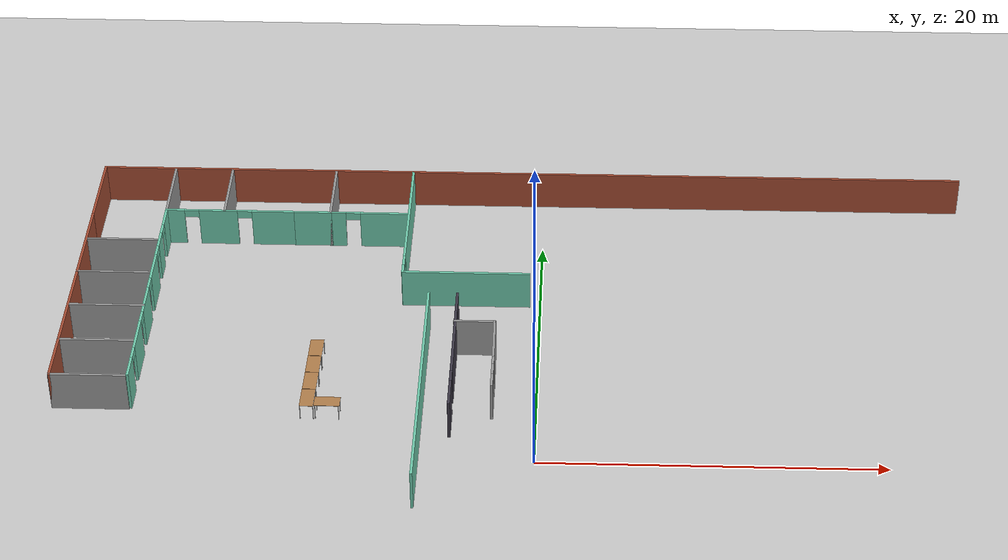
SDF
<sdf version="1.7">
 <world name="default">
  <model name="ground_plane">
   <static>1</static>
   <link name="link">
    <collision name="collision">
     <geometry><plane><normal>0 0 1</normal><size>100 100</size></plane></geometry>
     <surface>
      <contact><ode><kp>1e15</kp><kd>1e13</kd></ode></contact>
      <friction><ode><mu>1.0</mu><mu2>1.0</mu2></ode></friction>
     </surface>
    </collision>
    <visual name="visual">
     <cast_shadows>0</cast_shadows>
     <geometry><plane><normal>0 0 1</normal><size>100 100</size></plane></geometry>
     <material>
      <script><uri>file://media/materials/scripts/gazebo.material</uri><name>Gazebo/Grey</name></script>
     </material>
    </visual>
   </link>
  </model>
  <model name="circuit_launch">
   <pose>-0.874625 6.32825 0 0 -0 0</pose>
   <link name="Wall_107">
    <pose>-18.6032 13.9124 0 0 -0 3.14159</pose>
    <visual name="Wall_107_Visual_0">
     <pose>-2.69056 0 1.25 0 -0 0</pose>
     <geometry><box><size>2.61888 0.15 2.5</size></box></geometry>
     <material>
      <script><uri>file://media/materials/scripts/gazebo.material</uri><name>Gazebo/Grey</name></script>
      <ambient>0.435294 0.796078 0.67451 1</ambient>
     </material>
     <meta><layer>0</layer></meta>
    </visual>
    <collision name="Wall_107_Collision_0">
     <geometry><box><size>2.61888 0.15 2.5</size></box></geometry>
     <pose>-2.69056 0 1.25 0 -0 0</pose>
    </collision>
    <visual name="Wall_107_Visual_1">
     <pose>0.710992 0 1.25 0 -0 0</pose>
     <geometry><box><size>2.38423 0.15 2.5</size></box></geometry>
     <material>
      <script><uri>file://media/materials/scripts/gazebo.material</uri><name>Gazebo/Grey</name></script>
      <ambient>0.435294 0.796078 0.67451 1</ambient>
     </material>
     <meta><layer>0</layer></meta>
    </visual>
    <collision name="Wall_107_Collision_1">
     <geometry><box><size>2.38423 0.15 2.5</size></box></geometry>
     <pose>0.710992 0 1.25 0 -0 0</pose>
    </collision>
    <visual name="Wall_107_Visual_2">
     <pose>3.40155 0 1.25 0 -0 0</pose>
     <geometry><box><size>1.19689 0.15 2.5</size></box></geometry>
     <material>
      <script><uri>file://media/materials/scripts/gazebo.material</uri><name>Gazebo/Grey</name></script>
      <ambient>0.435294 0.796078 0.67451 1</ambient>
     </material>
     <meta><layer>0</layer></meta>
    </visual>
    <collision name="Wall_107_Collision_2">
     <geometry><box><size>1.19689 0.15 2.5</size></box></geometry>
     <pose>3.40155 0 1.25 0 -0 0</pose>
    </collision>
    <visual name="Wall_107_Visual_3">
     <pose>-0.931122 0 2.25 0 -0 0</pose>
     <geometry><box><size>0.9 0.15 0.5</size></box></geometry>
     <material>
      <script><uri>file://media/materials/scripts/gazebo.material</uri><name>Gazebo/Grey</name></script>
      <ambient>0.435294 0.796078 0.67451 1</ambient>
     </material>
     <meta><layer>0</layer></meta>
    </visual>
    <collision name="Wall_107_Collision_3">
     <geometry><box><size>0.9 0.15 0.5</size></box></geometry>
     <pose>-0.931122 0 2.25 0 -0 0</pose>
    </collision>
    <visual name="Wall_107_Visual_4">
     <pose>2.35311 0 2.25 0 -0 0</pose>
     <geometry><box><size>0.9 0.15 0.5</size></box></geometry>
     <material>
      <script><uri>file://media/materials/scripts/gazebo.material</uri><name>Gazebo/Grey</name></script>
      <ambient>0.435294 0.796078 0.67451 1</ambient>
     </material>
     <meta><layer>0</layer></meta>
    </visual>
    <collision name="Wall_107_Collision_4">
     <geometry><box><size>0.9 0.15 0.5</size></box></geometry>
     <pose>2.35311 0 2.25 0 -0 0</pose>
    </collision>
   </link>
   <link name="Wall_111">
    <pose>-22.5282 5.86241 0 0 -0 -1.5708</pose>
    <visual name="Wall_111_Visual_0">
     <pose>-7.31172 0 1.25 0 -0 0</pose>
     <geometry><box><size>1.62655 0.15 2.5</size></box></geometry>
     <material>
      <script><uri>file://media/materials/scripts/gazebo.material</uri><name>Gazebo/Grey</name></script>
      <ambient>0.435294 0.796078 0.67451 1</ambient>
     </material>
     <meta><layer>0</layer></meta>
    </visual>
    <collision name="Wall_111_Collision_0">
     <geometry><box><size>1.62655 0.15 2.5</size></box></geometry>
     <pose>-7.31172 0 1.25 0 -0 0</pose>
    </collision>
    <visual name="Wall_111_Visual_1">
     <pose>-4.93124 0 1.25 0 -0 0</pose>
     <geometry><box><size>1.33442 0.15 2.5</size></box></geometry>
     <material>
      <script><uri>file://media/materials/scripts/gazebo.material</uri><name>Gazebo/Grey</name></script>
      <ambient>0.435294 0.796078 0.67451 1</ambient>
     </material>
     <meta><layer>0</layer></meta>
    </visual>
    <collision name="Wall_111_Collision_1">
     <geometry><box><size>1.33442 0.15 2.5</size></box></geometry>
     <pose>-4.93124 0 1.25 0 -0 0</pose>
    </collision>
    <visual name="Wall_111_Visual_2">
     <pose>-2.19142 0 1.25 0 -0 0</pose>
     <geometry><box><size>2.34522 0.15 2.5</size></box></geometry>
     <material>
      <script><uri>file://media/materials/scripts/gazebo.material</uri><name>Gazebo/Grey</name></script>
      <ambient>0.435294 0.796078 0.67451 1</ambient>
     </material>
     <meta><layer>0</layer></meta>
    </visual>
    <collision name="Wall_111_Collision_2">
     <geometry><box><size>2.34522 0.15 2.5</size></box></geometry>
     <pose>-2.19142 0 1.25 0 -0 0</pose>
    </collision>
    <visual name="Wall_111_Visual_3">
     <pose>1.0671 0 1.25 0 -0 0</pose>
     <geometry><box><size>2.37182 0.15 2.5</size></box></geometry>
     <material>
      <script><uri>file://media/materials/scripts/gazebo.material</uri><name>Gazebo/Grey</name></script>
      <ambient>0.435294 0.796078 0.67451 1</ambient>
     </material>
     <meta><layer>0</layer></meta>
    </visual>
    <collision name="Wall_111_Collision_3">
     <geometry><box><size>2.37182 0.15 2.5</size></box></geometry>
     <pose>1.0671 0 1.25 0 -0 0</pose>
    </collision>
    <visual name="Wall_111_Visual_4">
     <pose>4.37883 0 1.25 0 -0 0</pose>
     <geometry><box><size>2.45162 0.15 2.5</size></box></geometry>
     <material>
      <script><uri>file://media/materials/scripts/gazebo.material</uri><name>Gazebo/Grey</name></script>
      <ambient>0.435294 0.796078 0.67451 1</ambient>
     </material>
     <meta><layer>0</layer></meta>
    </visual>
    <collision name="Wall_111_Collision_4">
     <geometry><box><size>2.45162 0.15 2.5</size></box></geometry>
     <pose>4.37883 0 1.25 0 -0 0</pose>
    </collision>
    <visual name="Wall_111_Visual_5">
     <pose>7.31482 0 1.25 0 -0 0</pose>
     <geometry><box><size>1.62036 0.15 2.5</size></box></geometry>
     <material>
      <script><uri>file://media/materials/scripts/gazebo.material</uri><name>Gazebo/Grey</name></script>
      <ambient>0.435294 0.796078 0.67451 1</ambient>
     </material>
     <meta><layer>0</layer></meta>
    </visual>
    <collision name="Wall_111_Collision_5">
     <geometry><box><size>1.62036 0.15 2.5</size></box></geometry>
     <pose>7.31482 0 1.25 0 -0 0</pose>
    </collision>
    <visual name="Wall_111_Visual_6">
     <pose>-6.04845 0 2.25 0 -0 0</pose>
     <geometry><box><size>0.9 0.15 0.5</size></box></geometry>
     <material>
      <script><uri>file://media/materials/scripts/gazebo.material</uri><name>Gazebo/Grey</name></script>
      <ambient>0.435294 0.796078 0.67451 1</ambient>
     </material>
     <meta><layer>0</layer></meta>
    </visual>
    <collision name="Wall_111_Collision_6">
     <geometry><box><size>0.9 0.15 0.5</size></box></geometry>
     <pose>-6.04845 0 2.25 0 -0 0</pose>
    </collision>
    <visual name="Wall_111_Visual_7">
     <pose>-3.81403 0 2.25 0 -0 0</pose>
     <geometry><box><size>0.9 0.15 0.5</size></box></geometry>
     <material>
      <script><uri>file://media/materials/scripts/gazebo.material</uri><name>Gazebo/Grey</name></script>
      <ambient>0.435294 0.796078 0.67451 1</ambient>
     </material>
     <meta><layer>0</layer></meta>
    </visual>
    <collision name="Wall_111_Collision_7">
     <geometry><box><size>0.9 0.15 0.5</size></box></geometry>
     <pose>-3.81403 0 2.25 0 -0 0</pose>
    </collision>
    <visual name="Wall_111_Visual_8">
     <pose>-0.568808 0 2.25 0 -0 0</pose>
     <geometry><box><size>0.9 0.15 0.5</size></box></geometry>
     <material>
      <script><uri>file://media/materials/scripts/gazebo.material</uri><name>Gazebo/Grey</name></script>
      <ambient>0.435294 0.796078 0.67451 1</ambient>
     </material>
     <meta><layer>0</layer></meta>
    </visual>
    <collision name="Wall_111_Collision_8">
     <geometry><box><size>0.9 0.15 0.5</size></box></geometry>
     <pose>-0.568808 0 2.25 0 -0 0</pose>
    </collision>
    <visual name="Wall_111_Visual_9">
     <pose>2.70302 0 2.25 0 -0 0</pose>
     <geometry><box><size>0.9 0.15 0.5</size></box></geometry>
     <material>
      <script><uri>file://media/materials/scripts/gazebo.material</uri><name>Gazebo/Grey</name></script>
      <ambient>0.435294 0.796078 0.67451 1</ambient>
     </material>
     <meta><layer>0</layer></meta>
    </visual>
    <collision name="Wall_111_Collision_9">
     <geometry><box><size>0.9 0.15 0.5</size></box></geometry>
     <pose>2.70302 0 2.25 0 -0 0</pose>
    </collision>
    <visual name="Wall_111_Visual_10">
     <pose>6.05464 0 2.25 0 -0 0</pose>
     <geometry><box><size>0.9 0.15 0.5</size></box></geometry>
     <material>
      <script><uri>file://media/materials/scripts/gazebo.material</uri><name>Gazebo/Grey</name></script>
      <ambient>0.435294 0.796078 0.67451 1</ambient>
     </material>
     <meta><layer>0</layer></meta>
    </visual>
    <collision name="Wall_111_Collision_10">
     <geometry><box><size>0.9 0.15 0.5</size></box></geometry>
     <pose>6.05464 0 2.25 0 -0 0</pose>
    </collision>
   </link>
   <link name="Wall_124">
    <collision name="Wall_124_Collision">
     <geometry><box><size>16.25 0.15 2.5</size></box></geometry>
     <pose>0 0 1.25 0 -0 0</pose>
    </collision>
    <visual name="Wall_124_Visual">
     <pose>0 0 1.25 0 -0 0</pose>
     <geometry><box><size>16.25 0.15 2.5</size></box></geometry>
     <material>
      <script><uri>file://media/materials/scripts/gazebo.material</uri><name>Gazebo/Grey</name></script>
      <ambient>0.435294 0.796078 0.67451 1</ambient>
     </material>
     <meta><layer>0</layer></meta>
    </visual>
    <pose>-5.75967 -2.14165 0 0 -0 -1.5708</pose>
   </link>
   <link name="Wall_14">
    <pose>-4.03141 0.854113 0 0 -0 -1.57076</pose>
    <visual name="Wall_14_Visual_0">
     <pose>-4.27972 0 1.25 0 -0 0</pose>
     <geometry><box><size>1.66175 0.15 2.5</size></box></geometry>
     <material>
      <script><uri>file://media/materials/scripts/gazebo.material</uri><name>Gazebo/Grey</name></script>
      <ambient>0.239216 0.219608 0.27451 1</ambient>
     </material>
     <meta><layer>0</layer></meta>
    </visual>
    <collision name="Wall_14_Collision_0">
     <geometry><box><size>1.66175 0.15 2.5</size></box></geometry>
     <pose>-4.27972 0 1.25 0 -0 0</pose>
    </collision>
    <visual name="Wall_14_Visual_1">
     <pose>-0.200437 0 1.25 0 -0 0</pose>
     <geometry><box><size>4.69681 0.15 2.5</size></box></geometry>
     <material>
      <script><uri>file://media/materials/scripts/gazebo.material</uri><name>Gazebo/Grey</name></script>
      <ambient>0.239216 0.219608 0.27451 1</ambient>
     </material>
     <meta><layer>0</layer></meta>
    </visual>
    <collision name="Wall_14_Collision_1">
     <geometry><box><size>4.69681 0.15 2.5</size></box></geometry>
     <pose>-0.200437 0 1.25 0 -0 0</pose>
    </collision>
    <visual name="Wall_14_Visual_2">
     <pose>4.07928 0 1.25 0 -0 0</pose>
     <geometry><box><size>2.06262 0.15 2.5</size></box></geometry>
     <material>
      <script><uri>file://media/materials/scripts/gazebo.material</uri><name>Gazebo/Grey</name></script>
      <ambient>0.239216 0.219608 0.27451 1</ambient>
     </material>
     <meta><layer>0</layer></meta>
    </visual>
    <collision name="Wall_14_Collision_2">
     <geometry><box><size>2.06262 0.15 2.5</size></box></geometry>
     <pose>4.07928 0 1.25 0 -0 0</pose>
    </collision>
    <visual name="Wall_14_Visual_3">
     <pose>-2.99884 0 2.25 0 -0 0</pose>
     <geometry><box><size>0.9 0.15 0.5</size></box></geometry>
     <material>
      <script><uri>file://media/materials/scripts/gazebo.material</uri><name>Gazebo/Grey</name></script>
      <ambient>0.239216 0.219608 0.27451 1</ambient>
     </material>
     <meta><layer>0</layer></meta>
    </visual>
    <collision name="Wall_14_Collision_3">
     <geometry><box><size>0.9 0.15 0.5</size></box></geometry>
     <pose>-2.99884 0 2.25 0 -0 0</pose>
    </collision>
    <visual name="Wall_14_Visual_4">
     <pose>2.59797 0 2.25 0 -0 0</pose>
     <geometry><box><size>0.9 0.15 0.5</size></box></geometry>
     <material>
      <script><uri>file://media/materials/scripts/gazebo.material</uri><name>Gazebo/Grey</name></script>
      <ambient>0.239216 0.219608 0.27451 1</ambient>
     </material>
     <meta><layer>0</layer></meta>
    </visual>
    <collision name="Wall_14_Collision_4">
     <geometry><box><size>0.9 0.15 0.5</size></box></geometry>
     <pose>2.59797 0 2.25 0 -0 0</pose>
    </collision>
   </link>
   <link name="Wall_167">
    <collision name="Wall_167_Collision">
     <geometry><box><size>4.5 0.15 2.5</size></box></geometry>
     <pose>0 0 1.25 0 -0 0</pose>
    </collision>
    <visual name="Wall_167_Visual">
     <pose>0 0 1.25 0 -0 0</pose>
     <geometry><box><size>4.5 0.15 2.5</size></box></geometry>
     <material>
      <script><uri>file://media/materials/scripts/gazebo.material</uri><name>Gazebo/Grey</name></script>
      <ambient>1 1 1 1</ambient>
     </material>
     <meta><layer>0</layer></meta>
    </visual>
    <pose>-18.9148 16.0952 0 0 -0 1.5708</pose>
   </link>
   <link name="Wall_169">
    <collision name="Wall_169_Collision">
     <geometry><box><size>4.5 0.15 2.5</size></box></geometry>
     <pose>0 0 1.25 0 -0 0</pose>
    </collision>
    <visual name="Wall_169_Visual">
     <pose>0 0 1.25 0 -0 0</pose>
     <geometry><box><size>4.5 0.15 2.5</size></box></geometry>
     <material>
      <script><uri>file://media/materials/scripts/gazebo.material</uri><name>Gazebo/Grey</name></script>
      <ambient>1 1 1 1</ambient>
     </material>
     <meta><layer>0</layer></meta>
    </visual>
    <pose>-22.5282 16.0874 0 0 -0 1.5708</pose>
   </link>
   <link name="Wall_171">
    <collision name="Wall_171_Collision">
     <geometry><box><size>4.5 0.15 2.5</size></box></geometry>
     <pose>0 0 1.25 0 -0 0</pose>
    </collision>
    <visual name="Wall_171_Visual">
     <pose>0 0 1.25 0 -0 0</pose>
     <geometry><box><size>4.5 0.15 2.5</size></box></geometry>
     <material>
      <script><uri>file://media/materials/scripts/gazebo.material</uri><name>Gazebo/Grey</name></script>
      <ambient>1 1 1 1</ambient>
     </material>
     <meta><layer>0</layer></meta>
    </visual>
    <pose>-24.8529 10.7814 0 0 -0 0</pose>
   </link>
   <link name="Wall_173">
    <collision name="Wall_173_Collision">
     <geometry><box><size>4.5 0.15 2.5</size></box></geometry>
     <pose>0 0 1.25 0 -0 0</pose>
    </collision>
    <visual name="Wall_173_Visual">
     <pose>0 0 1.25 0 -0 0</pose>
     <geometry><box><size>4.5 0.15 2.5</size></box></geometry>
     <material>
      <script><uri>file://media/materials/scripts/gazebo.material</uri><name>Gazebo/Grey</name></script>
      <ambient>1 1 1 1</ambient>
     </material>
     <meta><layer>0</layer></meta>
    </visual>
    <pose>-24.8263 7.48298 0 0 -0 0</pose>
   </link>
   <link name="Wall_175">
    <collision name="Wall_175_Collision">
     <geometry><box><size>4.5 0.15 2.5</size></box></geometry>
     <pose>0 0 1.25 0 -0 0</pose>
    </collision>
    <visual name="Wall_175_Visual">
     <pose>0 0 1.25 0 -0 0</pose>
     <geometry><box><size>4.5 0.15 2.5</size></box></geometry>
     <material>
      <script><uri>file://media/materials/scripts/gazebo.material</uri><name>Gazebo/Grey</name></script>
      <ambient>1 1 1 1</ambient>
     </material>
     <meta><layer>0</layer></meta>
    </visual>
    <pose>-24.7465 4.23776 0 0 -0 0</pose>
   </link>
   <link name="Wall_177">
    <collision name="Wall_177_Collision">
     <geometry><box><size>4.5 0.15 2.5</size></box></geometry>
     <pose>0 0 1.25 0 -0 0</pose>
    </collision>
    <visual name="Wall_177_Visual">
     <pose>0 0 1.25 0 -0 0</pose>
     <geometry><box><size>4.5 0.15 2.5</size></box></geometry>
     <material>
      <script><uri>file://media/materials/scripts/gazebo.material</uri><name>Gazebo/Grey</name></script>
      <ambient>1 1 1 1</ambient>
     </material>
     <meta><layer>0</layer></meta>
    </visual>
    <pose>-24.8529 0.912735 0 0 -0 0</pose>
   </link>
   <link name="Wall_179">
    <collision name="Wall_179_Collision">
     <geometry><box><size>4.5 0.15 2.5</size></box></geometry>
     <pose>0 0 1.25 0 -0 0</pose>
    </collision>
    <visual name="Wall_179_Visual">
     <pose>0 0 1.25 0 -0 0</pose>
     <geometry><box><size>4.5 0.15 2.5</size></box></geometry>
     <material>
      <script><uri>file://media/materials/scripts/gazebo.material</uri><name>Gazebo/Grey</name></script>
      <ambient>1 1 1 1</ambient>
     </material>
     <meta><layer>0</layer></meta>
    </visual>
    <pose>-24.8498 -2.2895 0 0 -0 0</pose>
   </link>
   <link name="Wall_188">
    <collision name="Wall_188_Collision">
     <geometry><box><size>2.5 0.15 2.5</size></box></geometry>
     <pose>0 0 1.25 0 -0 0</pose>
    </collision>
    <visual name="Wall_188_Visual">
     <pose>0 0 1.25 0 -0 0</pose>
     <geometry><box><size>2.5 0.15 2.5</size></box></geometry>
     <material>
      <script><uri>file://media/materials/scripts/gazebo.material</uri><name>Gazebo/Grey</name></script>
      <ambient>0.435294 0.796078 0.67451 1</ambient>
     </material>
     <meta><layer>0</layer></meta>
    </visual>
    <pose>-13.5032 13.9124 0 0 -0 0</pose>
   </link>
   <link name="Wall_189">
    <collision name="Wall_189_Collision">
     <geometry><box><size>4.5 0.15 2.5</size></box></geometry>
     <pose>0 0 1.25 0 -0 0</pose>
    </collision>
    <visual name="Wall_189_Visual">
     <pose>0 0 1.25 0 -0 0</pose>
     <geometry><box><size>4.5 0.15 2.5</size></box></geometry>
     <material>
      <script><uri>file://media/materials/scripts/gazebo.material</uri><name>Gazebo/Grey</name></script>
      <ambient>1 1 1 1</ambient>
     </material>
     <meta><layer>0</layer></meta>
    </visual>
    <pose>-12.3282 16.0874 0 0 -0 1.5708</pose>
   </link>
   <link name="Wall_200">
    <collision name="Wall_200_Collision">
     <geometry><box><size>7.75 0.15 2.5</size></box></geometry>
     <pose>0 0 1.25 0 -0 0</pose>
    </collision>
    <visual name="Wall_200_Visual">
     <pose>0 0 1.25 0 -0 0</pose>
     <geometry><box><size>7.75 0.15 2.5</size></box></geometry>
     <material>
      <script><uri>file://media/materials/scripts/gazebo.material</uri><name>Gazebo/Grey</name></script>
      <ambient>0.435294 0.796078 0.67451 1</ambient>
     </material>
     <meta><layer>0</layer></meta>
    </visual>
    <pose>-3.62017 7.97482 0 0 -0 3.14159</pose>
   </link>
   <link name="Wall_204">
    <pose>-7.44304 13.1932 0 0 -0 -1.5708</pose>
    <visual name="Wall_204_Visual_0">
     <pose>-0.821435 0 1.25 0 -0 0</pose>
     <geometry><box><size>8.85713 0.15 2.5</size></box></geometry>
     <material>
      <script><uri>file://media/materials/scripts/gazebo.material</uri><name>Gazebo/Grey</name></script>
      <ambient>0.435294 0.796078 0.67451 1</ambient>
     </material>
     <meta><layer>0</layer></meta>
    </visual>
    <collision name="Wall_204_Collision_0">
     <geometry><box><size>8.85713 0.15 2.5</size></box></geometry>
     <pose>-0.821435 0 1.25 0 -0 0</pose>
    </collision>
    <visual name="Wall_204_Visual_1">
     <pose>4.87857 0 1.25 0 -0 0</pose>
     <geometry><box><size>0.74287 0.15 2.5</size></box></geometry>
     <material>
      <script><uri>file://media/materials/scripts/gazebo.material</uri><name>Gazebo/Grey</name></script>
      <ambient>0.435294 0.796078 0.67451 1</ambient>
     </material>
     <meta><layer>0</layer></meta>
    </visual>
    <collision name="Wall_204_Collision_1">
     <geometry><box><size>0.74287 0.15 2.5</size></box></geometry>
     <pose>4.87857 0 1.25 0 -0 0</pose>
    </collision>
    <visual name="Wall_204_Visual_2">
     <pose>4.05713 0 2.25 0 -0 0</pose>
     <geometry><box><size>0.9 0.15 0.5</size></box></geometry>
     <material>
      <script><uri>file://media/materials/scripts/gazebo.material</uri><name>Gazebo/Grey</name></script>
      <ambient>0.435294 0.796078 0.67451 1</ambient>
     </material>
     <meta><layer>0</layer></meta>
    </visual>
    <collision name="Wall_204_Collision_2">
     <geometry><box><size>0.9 0.15 0.5</size></box></geometry>
     <pose>4.05713 0 2.25 0 -0 0</pose>
    </collision>
   </link>
   <link name="Wall_206">
    <pose>-9.90315 13.9124 0 0 -0 0</pose>
    <visual name="Wall_206_Visual_0">
     <pose>-1.98589 0 1.25 0 -0 0</pose>
     <geometry><box><size>1.02823 0.15 2.5</size></box></geometry>
     <material>
      <script><uri>file://media/materials/scripts/gazebo.material</uri><name>Gazebo/Grey</name></script>
      <ambient>0.435294 0.796078 0.67451 1</ambient>
     </material>
     <meta><layer>0</layer></meta>
    </visual>
    <collision name="Wall_206_Collision_0">
     <geometry><box><size>1.02823 0.15 2.5</size></box></geometry>
     <pose>-1.98589 0 1.25 0 -0 0</pose>
    </collision>
    <visual name="Wall_206_Visual_1">
     <pose>0.964114 0 1.25 0 -0 0</pose>
     <geometry><box><size>3.07177 0.15 2.5</size></box></geometry>
     <material>
      <script><uri>file://media/materials/scripts/gazebo.material</uri><name>Gazebo/Grey</name></script>
      <ambient>0.435294 0.796078 0.67451 1</ambient>
     </material>
     <meta><layer>0</layer></meta>
    </visual>
    <collision name="Wall_206_Collision_1">
     <geometry><box><size>3.07177 0.15 2.5</size></box></geometry>
     <pose>0.964114 0 1.25 0 -0 0</pose>
    </collision>
    <visual name="Wall_206_Visual_2">
     <pose>-1.02177 0 2.25 0 -0 0</pose>
     <geometry><box><size>0.9 0.15 0.5</size></box></geometry>
     <material>
      <script><uri>file://media/materials/scripts/gazebo.material</uri><name>Gazebo/Grey</name></script>
      <ambient>0.435294 0.796078 0.67451 1</ambient>
     </material>
     <meta><layer>0</layer></meta>
    </visual>
    <collision name="Wall_206_Collision_2">
     <geometry><box><size>0.9 0.15 0.5</size></box></geometry>
     <pose>-1.02177 0 2.25 0 -0 0</pose>
    </collision>
   </link>
   <link name="Wall_24">
    <pose>-1.67128 -1.21881 0 0 -0 -1.5708</pose>
    <visual name="Wall_24_Visual_0">
     <pose>-0.984567 0 1.25 0 -0 0</pose>
     <geometry><box><size>0.780865 0.15 2.5</size></box></geometry>
     <material>
      <script><uri>file://media/materials/scripts/gazebo.material</uri><name>Gazebo/Grey</name></script>
      <ambient>1 1 1 1</ambient>
     </material>
     <meta><layer>0</layer></meta>
    </visual>
    <collision name="Wall_24_Collision_0">
     <geometry><box><size>0.780865 0.15 2.5</size></box></geometry>
     <pose>-0.984567 0 1.25 0 -0 0</pose>
    </collision>
    <visual name="Wall_24_Visual_1">
     <pose>0.840433 0 1.25 0 -0 0</pose>
     <geometry><box><size>1.06913 0.15 2.5</size></box></geometry>
     <material>
      <script><uri>file://media/materials/scripts/gazebo.material</uri><name>Gazebo/Grey</name></script>
      <ambient>1 1 1 1</ambient>
     </material>
     <meta><layer>0</layer></meta>
    </visual>
    <collision name="Wall_24_Collision_1">
     <geometry><box><size>1.06913 0.15 2.5</size></box></geometry>
     <pose>0.840433 0 1.25 0 -0 0</pose>
    </collision>
    <visual name="Wall_24_Visual_2">
     <pose>-0.144135 0 2.25 0 -0 0</pose>
     <geometry><box><size>0.9 0.15 0.5</size></box></geometry>
     <material>
      <script><uri>file://media/materials/scripts/gazebo.material</uri><name>Gazebo/Grey</name></script>
      <ambient>1 1 1 1</ambient>
     </material>
     <meta><layer>0</layer></meta>
    </visual>
    <collision name="Wall_24_Collision_2">
     <geometry><box><size>0.9 0.15 0.5</size></box></geometry>
     <pose>-0.144135 0 2.25 0 -0 0</pose>
    </collision>
   </link>
   <link name="Wall_29">
    <collision name="Wall_29_Collision">
     <geometry><box><size>2.5 0.15 2.5</size></box></geometry>
     <pose>0 0 1.25 0 -0 0</pose>
    </collision>
    <visual name="Wall_29_Visual">
     <pose>0 0 1.25 0 -0 0</pose>
     <geometry><box><size>2.5 0.15 2.5</size></box></geometry>
     <material>
      <script><uri>file://media/materials/scripts/gazebo.material</uri><name>Gazebo/Grey</name></script>
      <ambient>1 1 1 1</ambient>
     </material>
     <meta><layer>0</layer></meta>
    </visual>
    <pose>-2.88406 3.30545 0 0 -0 0</pose>
   </link>
   <link name="Wall_30">
    <collision name="Wall_30_Collision">
     <geometry><box><size>3.37448 0.15 2.5</size></box></geometry>
     <pose>0 0 1.25 0 -0 0</pose>
    </collision>
    <visual name="Wall_30_Visual">
     <pose>0 0 1.25 0 -0 0</pose>
     <geometry><box><size>3.37448 0.15 2.5</size></box></geometry>
     <material>
      <script><uri>file://media/materials/scripts/gazebo.material</uri><name>Gazebo/Grey</name></script>
      <ambient>1 1 1 1</ambient>
     </material>
     <meta><layer>0</layer></meta>
    </visual>
    <pose>-1.69017 1.69332 0 0 -0 -1.55908</pose>
   </link>
   <link name="Wall_56">
    <collision name="Wall_56_Collision">
     <geometry><box><size>15.75 0.15 2.5</size></box></geometry>
     <pose>0 0 1.25 0 -0 0</pose>
    </collision>
    <visual name="Wall_56_Visual">
     <pose>0 0 1.25 0 -0 0</pose>
     <geometry><box><size>15.75 0.15 2.5</size></box></geometry>
     <material>
      <script><uri>file://media/materials/scripts/gazebo.material</uri><name>Gazebo/Bricks</name></script>
      <ambient>1 1 1 1</ambient>
     </material>
     <meta><layer>0</layer></meta>
    </visual>
    <pose>-27.0248 5.5105 0 0 -0 1.5708</pose>
   </link>
   <link name="Wall_58">
    <collision name="Wall_58_Collision">
     <geometry><box><size>5.25 0.15 2.5</size></box></geometry>
     <pose>0 0 1.25 0 -0 0</pose>
    </collision>
    <visual name="Wall_58_Visual">
     <pose>0 0 1.25 0 -0 0</pose>
     <geometry><box><size>5.25 0.15 2.5</size></box></geometry>
     <material>
      <script><uri>file://media/materials/scripts/gazebo.material</uri><name>Gazebo/Bricks</name></script>
      <ambient>1 1 1 1</ambient>
     </material>
     <meta><layer>0</layer></meta>
    </visual>
    <pose>-27.0248 15.8605 0 0 -0 1.5708</pose>
   </link>
   <link name="Wall_59">
    <collision name="Wall_59_Collision">
     <geometry><box><size>54.1178 0.15 2.5</size></box></geometry>
     <pose>0 0 1.25 0 -0 0</pose>
    </collision>
    <visual name="Wall_59_Visual">
     <pose>0 0 1.25 0 -0 0</pose>
     <geometry><box><size>54.1178 0.15 2.5</size></box></geometry>
     <material>
      <script><uri>file://media/materials/scripts/gazebo.material</uri><name>Gazebo/Bricks</name></script>
      <ambient>1 1 1 1</ambient>
     </material>
     <meta><layer>0</layer></meta>
    </visual>
    <pose>-0.040942 18.438 0 0 -0 0.00102</pose>
   </link>
   <static>1</static>
  </model>
  <model name="table_clone_4">
   <static>1</static>
   <link name="link">
    <collision name="surface">
     <pose>0 0 1 0 -0 0</pose>
     <geometry><box><size>1.5 0.8 0.03</size></box></geometry>
     <surface><friction><ode><mu>0.6</mu><mu2>0.6</mu2></ode></friction></surface>
    </collision>
    <visual name="visual1">
     <pose>0 0 1 0 -0 0</pose>
     <geometry><box><size>1.5 0.8 0.03</size></box></geometry>
     <material>
      <script><uri>file://media/materials/scripts/gazebo.material</uri><name>Gazebo/Wood</name></script>
     </material>
    </visual>
    <collision name="front_left_leg">
     <pose>0.68 0.38 0.5 0 -0 0</pose>
     <geometry><cylinder><radius>0.02</radius><length>1</length></cylinder></geometry>
    </collision>
    <visual name="front_left_leg">
     <pose>0.68 0.38 0.5 0 -0 0</pose>
     <geometry><cylinder><radius>0.02</radius><length>1</length></cylinder></geometry>
     <material>
      <script><uri>file://media/materials/scripts/gazebo.material</uri><name>Gazebo/Grey</name></script>
     </material>
    </visual>
    <collision name="front_right_leg">
     <pose>0.68 -0.38 0.5 0 -0 0</pose>
     <geometry><cylinder><radius>0.02</radius><length>1</length></cylinder></geometry>
    </collision>
    <visual name="front_right_leg">
     <pose>0.68 -0.38 0.5 0 -0 0</pose>
     <geometry><cylinder><radius>0.02</radius><length>1</length></cylinder></geometry>
     <material>
      <script><uri>file://media/materials/scripts/gazebo.material</uri><name>Gazebo/Grey</name></script>
     </material>
    </visual>
    <collision name="back_right_leg">
     <pose>-0.68 -0.38 0.5 0 -0 0</pose>
     <geometry><cylinder><radius>0.02</radius><length>1</length></cylinder></geometry>
    </collision>
    <visual name="back_right_leg">
     <pose>-0.68 -0.38 0.5 0 -0 0</pose>
     <geometry><cylinder><radius>0.02</radius><length>1</length></cylinder></geometry>
     <material>
      <script><uri>file://media/materials/scripts/gazebo.material</uri><name>Gazebo/Grey</name></script>
     </material>
    </visual>
    <collision name="back_left_leg">
     <pose>-0.68 0.38 0.5 0 -0 0</pose>
     <geometry><cylinder><radius>0.02</radius><length>1</length></cylinder></geometry>
    </collision>
    <visual name="back_left_leg">
     <pose>-0.68 0.38 0.5 0 -0 0</pose>
     <geometry><cylinder><radius>0.02</radius><length>1</length></cylinder></geometry>
     <material>
      <script><uri>file://media/materials/scripts/gazebo.material</uri><name>Gazebo/Grey</name></script>
     </material>
    </visual>
   </link>
   <pose>-13.0671 8.71314 0 0 -0 1.55611</pose>
  </model>
  <model name="table_clone_5">
   <static>1</static>
   <link name="link">
    <collision name="surface">
     <pose>0 0 1 0 -0 0</pose>
     <geometry><box><size>1.5 0.8 0.03</size></box></geometry>
     <surface><friction><ode><mu>0.6</mu><mu2>0.6</mu2></ode></friction></surface>
    </collision>
    <visual name="visual1">
     <pose>0 0 1 0 -0 0</pose>
     <geometry><box><size>1.5 0.8 0.03</size></box></geometry>
     <material>
      <script><uri>file://media/materials/scripts/gazebo.material</uri><name>Gazebo/Wood</name></script>
     </material>
    </visual>
    <collision name="front_left_leg">
     <pose>0.68 0.38 0.5 0 -0 0</pose>
     <geometry><cylinder><radius>0.02</radius><length>1</length></cylinder></geometry>
    </collision>
    <visual name="front_left_leg">
     <pose>0.68 0.38 0.5 0 -0 0</pose>
     <geometry><cylinder><radius>0.02</radius><length>1</length></cylinder></geometry>
     <material>
      <script><uri>file://media/materials/scripts/gazebo.material</uri><name>Gazebo/Grey</name></script>
     </material>
    </visual>
    <collision name="front_right_leg">
     <pose>0.68 -0.38 0.5 0 -0 0</pose>
     <geometry><cylinder><radius>0.02</radius><length>1</length></cylinder></geometry>
    </collision>
    <visual name="front_right_leg">
     <pose>0.68 -0.38 0.5 0 -0 0</pose>
     <geometry><cylinder><radius>0.02</radius><length>1</length></cylinder></geometry>
     <material>
      <script><uri>file://media/materials/scripts/gazebo.material</uri><name>Gazebo/Grey</name></script>
     </material>
    </visual>
    <collision name="back_right_leg">
     <pose>-0.68 -0.38 0.5 0 -0 0</pose>
     <geometry><cylinder><radius>0.02</radius><length>1</length></cylinder></geometry>
    </collision>
    <visual name="back_right_leg">
     <pose>-0.68 -0.38 0.5 0 -0 0</pose>
     <geometry><cylinder><radius>0.02</radius><length>1</length></cylinder></geometry>
     <material>
      <script><uri>file://media/materials/scripts/gazebo.material</uri><name>Gazebo/Grey</name></script>
     </material>
    </visual>
    <collision name="back_left_leg">
     <pose>-0.68 0.38 0.5 0 -0 0</pose>
     <geometry><cylinder><radius>0.02</radius><length>1</length></cylinder></geometry>
    </collision>
    <visual name="back_left_leg">
     <pose>-0.68 0.38 0.5 0 -0 0</pose>
     <geometry><cylinder><radius>0.02</radius><length>1</length></cylinder></geometry>
     <material>
      <script><uri>file://media/materials/scripts/gazebo.material</uri><name>Gazebo/Grey</name></script>
     </material>
    </visual>
   </link>
   <pose>-13.0959 7.19163 0 0 -0 1.55611</pose>
  </model>
  <model name="table_clone_6">
   <static>1</static>
   <link name="link">
    <collision name="surface">
     <pose>0 0 1 0 -0 0</pose>
     <geometry><box><size>1.5 0.8 0.03</size></box></geometry>
     <surface><friction><ode><mu>0.6</mu><mu2>0.6</mu2></ode></friction></surface>
    </collision>
    <visual name="visual1">
     <pose>0 0 1 0 -0 0</pose>
     <geometry><box><size>1.5 0.8 0.03</size></box></geometry>
     <material>
      <script><uri>file://media/materials/scripts/gazebo.material</uri><name>Gazebo/Wood</name></script>
     </material>
    </visual>
    <collision name="front_left_leg">
     <pose>0.68 0.38 0.5 0 -0 0</pose>
     <geometry><cylinder><radius>0.02</radius><length>1</length></cylinder></geometry>
    </collision>
    <visual name="front_left_leg">
     <pose>0.68 0.38 0.5 0 -0 0</pose>
     <geometry><cylinder><radius>0.02</radius><length>1</length></cylinder></geometry>
     <material>
      <script><uri>file://media/materials/scripts/gazebo.material</uri><name>Gazebo/Grey</name></script>
     </material>
    </visual>
    <collision name="front_right_leg">
     <pose>0.68 -0.38 0.5 0 -0 0</pose>
     <geometry><cylinder><radius>0.02</radius><length>1</length></cylinder></geometry>
    </collision>
    <visual name="front_right_leg">
     <pose>0.68 -0.38 0.5 0 -0 0</pose>
     <geometry><cylinder><radius>0.02</radius><length>1</length></cylinder></geometry>
     <material>
      <script><uri>file://media/materials/scripts/gazebo.material</uri><name>Gazebo/Grey</name></script>
     </material>
    </visual>
    <collision name="back_right_leg">
     <pose>-0.68 -0.38 0.5 0 -0 0</pose>
     <geometry><cylinder><radius>0.02</radius><length>1</length></cylinder></geometry>
    </collision>
    <visual name="back_right_leg">
     <pose>-0.68 -0.38 0.5 0 -0 0</pose>
     <geometry><cylinder><radius>0.02</radius><length>1</length></cylinder></geometry>
     <material>
      <script><uri>file://media/materials/scripts/gazebo.material</uri><name>Gazebo/Grey</name></script>
     </material>
    </visual>
    <collision name="back_left_leg">
     <pose>-0.68 0.38 0.5 0 -0 0</pose>
     <geometry><cylinder><radius>0.02</radius><length>1</length></cylinder></geometry>
    </collision>
    <visual name="back_left_leg">
     <pose>-0.68 0.38 0.5 0 -0 0</pose>
     <geometry><cylinder><radius>0.02</radius><length>1</length></cylinder></geometry>
     <material>
      <script><uri>file://media/materials/scripts/gazebo.material</uri><name>Gazebo/Grey</name></script>
     </material>
    </visual>
   </link>
   <pose>-13.1175 5.66114 0 0 -0 1.55611</pose>
  </model>
  <model name="table_clone_7">
   <static>1</static>
   <link name="link">
    <collision name="surface">
     <pose>0 0 1 0 -0 0</pose>
     <geometry><box><size>1.5 0.8 0.03</size></box></geometry>
     <surface><friction><ode><mu>0.6</mu><mu2>0.6</mu2></ode></friction></surface>
    </collision>
    <visual name="visual1">
     <pose>0 0 1 0 -0 0</pose>
     <geometry><box><size>1.5 0.8 0.03</size></box></geometry>
     <material>
      <script><uri>file://media/materials/scripts/gazebo.material</uri><name>Gazebo/Wood</name></script>
     </material>
    </visual>
    <collision name="front_left_leg">
     <pose>0.68 0.38 0.5 0 -0 0</pose>
     <geometry><cylinder><radius>0.02</radius><length>1</length></cylinder></geometry>
    </collision>
    <visual name="front_left_leg">
     <pose>0.68 0.38 0.5 0 -0 0</pose>
     <geometry><cylinder><radius>0.02</radius><length>1</length></cylinder></geometry>
     <material>
      <script><uri>file://media/materials/scripts/gazebo.material</uri><name>Gazebo/Grey</name></script>
     </material>
    </visual>
    <collision name="front_right_leg">
     <pose>0.68 -0.38 0.5 0 -0 0</pose>
     <geometry><cylinder><radius>0.02</radius><length>1</length></cylinder></geometry>
    </collision>
    <visual name="front_right_leg">
     <pose>0.68 -0.38 0.5 0 -0 0</pose>
     <geometry><cylinder><radius>0.02</radius><length>1</length></cylinder></geometry>
     <material>
      <script><uri>file://media/materials/scripts/gazebo.material</uri><name>Gazebo/Grey</name></script>
     </material>
    </visual>
    <collision name="back_right_leg">
     <pose>-0.68 -0.38 0.5 0 -0 0</pose>
     <geometry><cylinder><radius>0.02</radius><length>1</length></cylinder></geometry>
    </collision>
    <visual name="back_right_leg">
     <pose>-0.68 -0.38 0.5 0 -0 0</pose>
     <geometry><cylinder><radius>0.02</radius><length>1</length></cylinder></geometry>
     <material>
      <script><uri>file://media/materials/scripts/gazebo.material</uri><name>Gazebo/Grey</name></script>
     </material>
    </visual>
    <collision name="back_left_leg">
     <pose>-0.68 0.38 0.5 0 -0 0</pose>
     <geometry><cylinder><radius>0.02</radius><length>1</length></cylinder></geometry>
    </collision>
    <visual name="back_left_leg">
     <pose>-0.68 0.38 0.5 0 -0 0</pose>
     <geometry><cylinder><radius>0.02</radius><length>1</length></cylinder></geometry>
     <material>
      <script><uri>file://media/materials/scripts/gazebo.material</uri><name>Gazebo/Grey</name></script>
     </material>
    </visual>
   </link>
   <pose>-13.1498 4.12927 0 0 -0 1.55611</pose>
  </model>
  <model name="table_clone_7_clone">
   <static>1</static>
   <link name="link">
    <collision name="surface">
     <pose>0 0 1 0 -0 0</pose>
     <geometry><box><size>1.5 0.8 0.03</size></box></geometry>
     <surface><friction><ode><mu>0.6</mu><mu2>0.6</mu2></ode></friction></surface>
    </collision>
    <visual name="visual1">
     <pose>0 0 1 0 -0 0</pose>
     <geometry><box><size>1.5 0.8 0.03</size></box></geometry>
     <material>
      <script><uri>file://media/materials/scripts/gazebo.material</uri><name>Gazebo/Wood</name></script>
     </material>
    </visual>
    <collision name="front_left_leg">
     <pose>0.68 0.38 0.5 0 -0 0</pose>
     <geometry><cylinder><radius>0.02</radius><length>1</length></cylinder></geometry>
    </collision>
    <visual name="front_left_leg">
     <pose>0.68 0.38 0.5 0 -0 0</pose>
     <geometry><cylinder><radius>0.02</radius><length>1</length></cylinder></geometry>
     <material>
      <script><uri>file://media/materials/scripts/gazebo.material</uri><name>Gazebo/Grey</name></script>
     </material>
    </visual>
    <collision name="front_right_leg">
     <pose>0.68 -0.38 0.5 0 -0 0</pose>
     <geometry><cylinder><radius>0.02</radius><length>1</length></cylinder></geometry>
    </collision>
    <visual name="front_right_leg">
     <pose>0.68 -0.38 0.5 0 -0 0</pose>
     <geometry><cylinder><radius>0.02</radius><length>1</length></cylinder></geometry>
     <material>
      <script><uri>file://media/materials/scripts/gazebo.material</uri><name>Gazebo/Grey</name></script>
     </material>
    </visual>
    <collision name="back_right_leg">
     <pose>-0.68 -0.38 0.5 0 -0 0</pose>
     <geometry><cylinder><radius>0.02</radius><length>1</length></cylinder></geometry>
    </collision>
    <visual name="back_right_leg">
     <pose>-0.68 -0.38 0.5 0 -0 0</pose>
     <geometry><cylinder><radius>0.02</radius><length>1</length></cylinder></geometry>
     <material>
      <script><uri>file://media/materials/scripts/gazebo.material</uri><name>Gazebo/Grey</name></script>
     </material>
    </visual>
    <collision name="back_left_leg">
     <pose>-0.68 0.38 0.5 0 -0 0</pose>
     <geometry><cylinder><radius>0.02</radius><length>1</length></cylinder></geometry>
    </collision>
    <visual name="back_left_leg">
     <pose>-0.68 0.38 0.5 0 -0 0</pose>
     <geometry><cylinder><radius>0.02</radius><length>1</length></cylinder></geometry>
     <material>
      <script><uri>file://media/materials/scripts/gazebo.material</uri><name>Gazebo/Grey</name></script>
     </material>
    </visual>
   </link>
   <pose>-11.9842 3.8295 0 0 0 -0.018624</pose>
  </model>
 </world>
</sdf>
